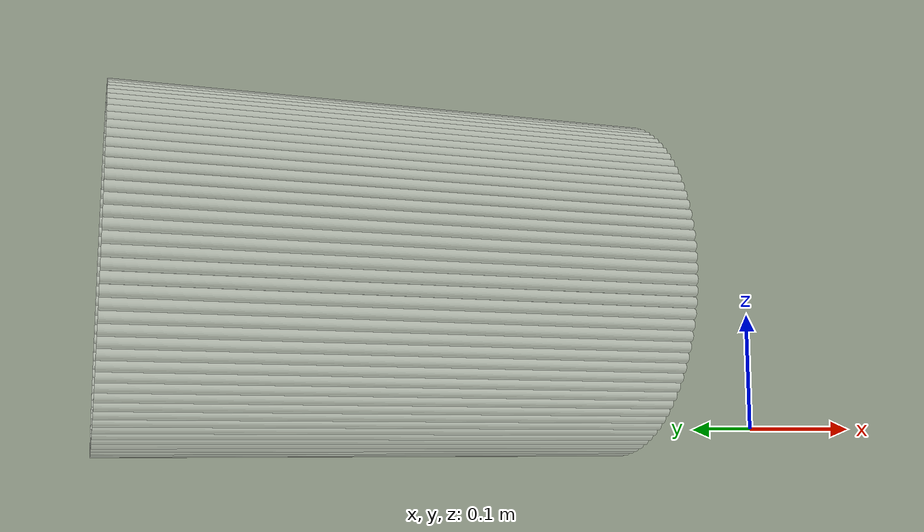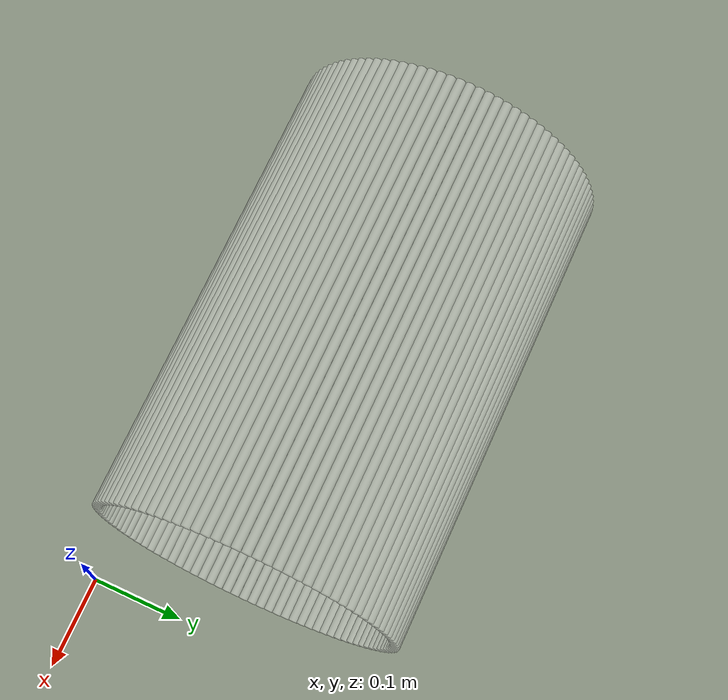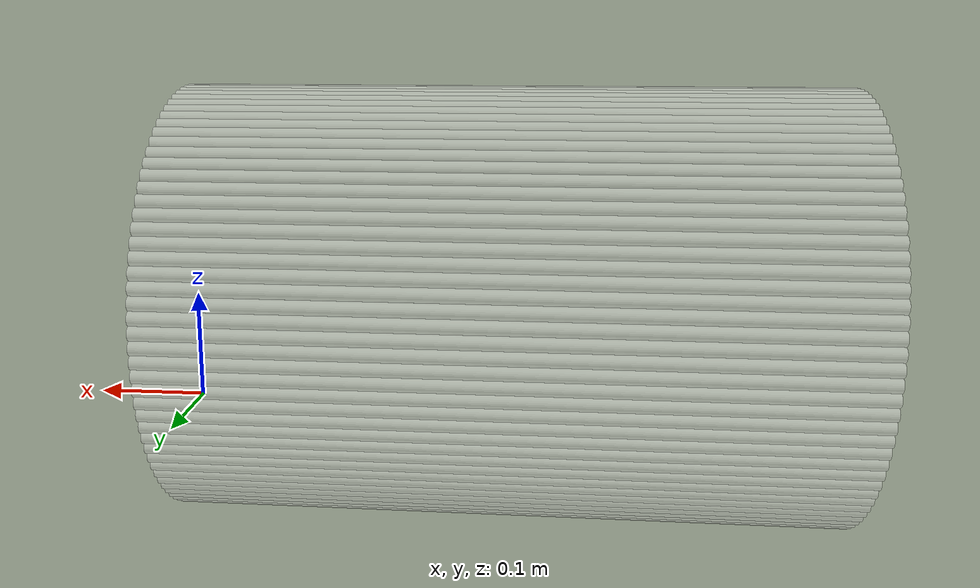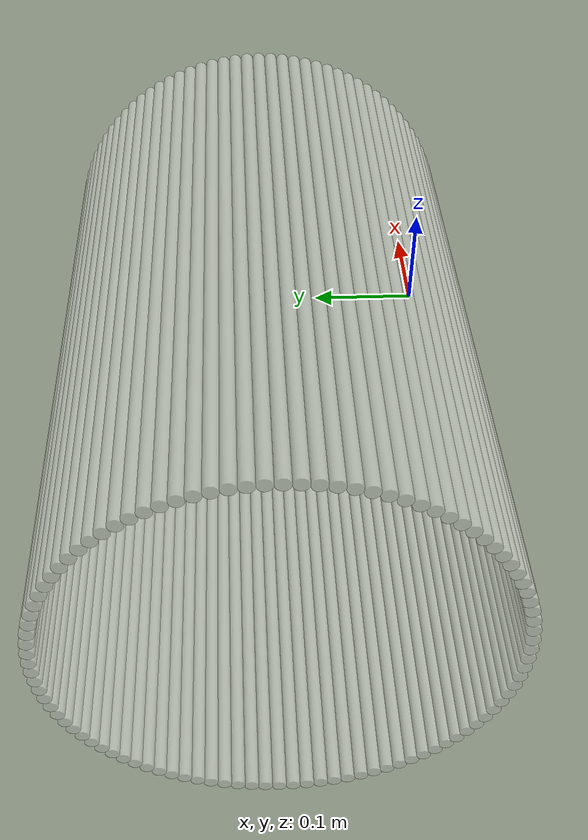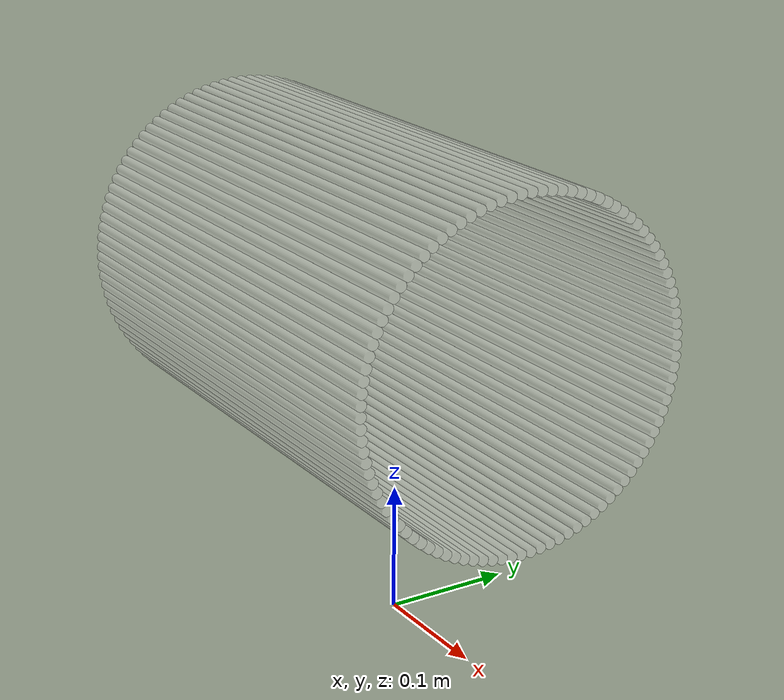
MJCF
<?xml version="1.0" encoding="utf-8"?>
<mujoco>

   <worldbody>
      <geom euler=" 0 10 0 " fromto="-0.05 0.32 0.14 -0.55 0.32 0.14" rgba="1 1 1 0.35"
            size="0.0050257"
            type="cylinder"/>
      <geom euler=" 0 20 0 " fromto="-0.05 0.31968 0.15005 -0.55 0.31968 0.15005"
            rgba="1 1 1 0.35"
            size="0.0050257"
            type="cylinder"/>
      <geom euler=" 0 30 0 " fromto="-0.05 0.31874 0.16005 -0.55 0.31874 0.16005"
            rgba="1 1 1 0.35"
            size="0.0050257"
            type="cylinder"/>
      <geom euler=" 0 40 0 " fromto="-0.05 0.31717 0.16998 -0.55 0.31717 0.16998"
            rgba="1 1 1 0.35"
            size="0.0050257"
            type="cylinder"/>
      <geom euler=" 0 50 0 " fromto="-0.05 0.31497 0.17979 -0.55 0.31497 0.17979"
            rgba="1 1 1 0.35"
            size="0.0050257"
            type="cylinder"/>
      <geom euler=" 0 60 0 " fromto="-0.05 0.31217 0.18944 -0.55 0.31217 0.18944"
            rgba="1 1 1 0.35"
            size="0.0050257"
            type="cylinder"/>
      <geom euler=" 0 70 0 " fromto="-0.05 0.30876 0.1989 -0.55 0.30876 0.1989"
            rgba="1 1 1 0.35"
            size="0.0050257"
            type="cylinder"/>
      <geom euler=" 0 80 0 " fromto="-0.05 0.30477 0.20812 -0.55 0.30477 0.20812"
            rgba="1 1 1 0.35"
            size="0.0050257"
            type="cylinder"/>
      <geom euler=" 0 90 0 " fromto="-0.05 0.30021 0.21708 -0.55 0.30021 0.21708"
            rgba="1 1 1 0.35"
            size="0.0050257"
            type="cylinder"/>
      <geom euler=" 0 100 0 " fromto="-0.05 0.29509 0.22573 -0.55 0.29509 0.22573"
            rgba="1 1 1 0.35"
            size="0.0050257"
            type="cylinder"/>
      <geom euler=" 0 110 0 " fromto="-0.05 0.28944 0.23405 -0.55 0.28944 0.23405"
            rgba="1 1 1 0.35"
            size="0.0050257"
            type="cylinder"/>
      <geom euler=" 0 120 0 " fromto="-0.05 0.28328 0.24199 -0.55 0.28328 0.24199"
            rgba="1 1 1 0.35"
            size="0.0050257"
            type="cylinder"/>
      <geom euler=" 0 130 0 " fromto="-0.05 0.27663 0.24953 -0.55 0.27663 0.24953"
            rgba="1 1 1 0.35"
            size="0.0050257"
            type="cylinder"/>
      <geom euler=" 0 140 0 " fromto="-0.05 0.26953 0.25663 -0.55 0.26953 0.25663"
            rgba="1 1 1 0.35"
            size="0.0050257"
            type="cylinder"/>
      <geom euler=" 0 150 0 " fromto="-0.05 0.26199 0.26328 -0.55 0.26199 0.26328"
            rgba="1 1 1 0.35"
            size="0.0050257"
            type="cylinder"/>
      <geom euler=" 0 160 0 " fromto="-0.05 0.25405 0.26944 -0.55 0.25405 0.26944"
            rgba="1 1 1 0.35"
            size="0.0050257"
            type="cylinder"/>
      <geom euler=" 0 170 0 " fromto="-0.05 0.24573 0.27509 -0.55 0.24573 0.27509"
            rgba="1 1 1 0.35"
            size="0.0050257"
            type="cylinder"/>
      <geom euler=" 0 180 0 " fromto="-0.05 0.23708 0.28021 -0.55 0.23708 0.28021"
            rgba="1 1 1 0.35"
            size="0.0050257"
            type="cylinder"/>
      <geom euler=" 0 190 0 " fromto="-0.05 0.22812 0.28477 -0.55 0.22812 0.28477"
            rgba="1 1 1 0.35"
            size="0.0050257"
            type="cylinder"/>
      <geom euler=" 0 200 0 " fromto="-0.05 0.2189 0.28876 -0.55 0.2189 0.28876"
            rgba="1 1 1 0.35"
            size="0.0050257"
            type="cylinder"/>
      <geom euler=" 0 210 0 " fromto="-0.05 0.20944 0.29217 -0.55 0.20944 0.29217"
            rgba="1 1 1 0.35"
            size="0.0050257"
            type="cylinder"/>
      <geom euler=" 0 220 0 " fromto="-0.05 0.19979 0.29497 -0.55 0.19979 0.29497"
            rgba="1 1 1 0.35"
            size="0.0050257"
            type="cylinder"/>
      <geom euler=" 0 230 0 " fromto="-0.05 0.18998 0.29717 -0.55 0.18998 0.29717"
            rgba="1 1 1 0.35"
            size="0.0050257"
            type="cylinder"/>
      <geom euler=" 0 240 0 " fromto="-0.05 0.18005 0.29874 -0.55 0.18005 0.29874"
            rgba="1 1 1 0.35"
            size="0.0050257"
            type="cylinder"/>
      <geom euler=" 0 250 0 " fromto="-0.05 0.17005 0.29968 -0.55 0.17005 0.29968"
            rgba="1 1 1 0.35"
            size="0.0050257"
            type="cylinder"/>
      <geom euler=" 0 260 0 " fromto="-0.05 0.16 0.3 -0.55 0.16 0.3" rgba="1 1 1 0.35"
            size="0.0050257"
            type="cylinder"/>
      <geom euler=" 0 270 0 " fromto="-0.05 0.14995 0.29968 -0.55 0.14995 0.29968"
            rgba="1 1 1 0.35"
            size="0.0050257"
            type="cylinder"/>
      <geom euler=" 0 280 0 " fromto="-0.05 0.13995 0.29874 -0.55 0.13995 0.29874"
            rgba="1 1 1 0.35"
            size="0.0050257"
            type="cylinder"/>
      <geom euler=" 0 290 0 " fromto="-0.05 0.13002 0.29717 -0.55 0.13002 0.29717"
            rgba="1 1 1 0.35"
            size="0.0050257"
            type="cylinder"/>
      <geom euler=" 0 300 0 " fromto="-0.05 0.12021 0.29497 -0.55 0.12021 0.29497"
            rgba="1 1 1 0.35"
            size="0.0050257"
            type="cylinder"/>
      <geom euler=" 0 310 0 " fromto="-0.05 0.11056 0.29217 -0.55 0.11056 0.29217"
            rgba="1 1 1 0.35"
            size="0.0050257"
            type="cylinder"/>
      <geom euler=" 0 320 0 " fromto="-0.05 0.1011 0.28876 -0.55 0.1011 0.28876"
            rgba="1 1 1 0.35"
            size="0.0050257"
            type="cylinder"/>
      <geom euler=" 0 330 0 " fromto="-0.05 0.091875 0.28477 -0.55 0.091875 0.28477"
            rgba="1 1 1 0.35"
            size="0.0050257"
            type="cylinder"/>
      <geom euler=" 0 340 0 " fromto="-0.05 0.082919 0.28021 -0.55 0.082919 0.28021"
            rgba="1 1 1 0.35"
            size="0.0050257"
            type="cylinder"/>
      <geom euler=" 0 350 0 " fromto="-0.05 0.074268 0.27509 -0.55 0.074268 0.27509"
            rgba="1 1 1 0.35"
            size="0.0050257"
            type="cylinder"/>
      <geom euler=" 0 360 0 " fromto="-0.05 0.065954 0.26944 -0.55 0.065954 0.26944"
            rgba="1 1 1 0.35"
            size="0.0050257"
            type="cylinder"/>
      <geom euler=" 0 370 0 " fromto="-0.05 0.058012 0.26328 -0.55 0.058012 0.26328"
            rgba="1 1 1 0.35"
            size="0.0050257"
            type="cylinder"/>
      <geom euler=" 0 380 0 " fromto="-0.05 0.050472 0.25663 -0.55 0.050472 0.25663"
            rgba="1 1 1 0.35"
            size="0.0050257"
            type="cylinder"/>
      <geom euler=" 0 390 0 " fromto="-0.05 0.043365 0.24953 -0.55 0.043365 0.24953"
            rgba="1 1 1 0.35"
            size="0.0050257"
            type="cylinder"/>
      <geom euler=" 0 400 0 " fromto="-0.05 0.036718 0.24199 -0.55 0.036718 0.24199"
            rgba="1 1 1 0.35"
            size="0.0050257"
            type="cylinder"/>
      <geom euler=" 0 410 0 " fromto="-0.05 0.030557 0.23405 -0.55 0.030557 0.23405"
            rgba="1 1 1 0.35"
            size="0.0050257"
            type="cylinder"/>
      <geom euler=" 0 420 0 " fromto="-0.05 0.024908 0.22573 -0.55 0.024908 0.22573"
            rgba="1 1 1 0.35"
            size="0.0050257"
            type="cylinder"/>
      <geom euler=" 0 430 0 " fromto="-0.05 0.019791 0.21708 -0.55 0.019791 0.21708"
            rgba="1 1 1 0.35"
            size="0.0050257"
            type="cylinder"/>
      <geom euler=" 0 440 0 " fromto="-0.05 0.015228 0.20812 -0.55 0.015228 0.20812"
            rgba="1 1 1 0.35"
            size="0.0050257"
            type="cylinder"/>
      <geom euler=" 0 450 0 " fromto="-0.05 0.011236 0.1989 -0.55 0.011236 0.1989"
            rgba="1 1 1 0.35"
            size="0.0050257"
            type="cylinder"/>
      <geom euler=" 0 460 0 " fromto="-0.05 0.007831 0.18944 -0.55 0.007831 0.18944"
            rgba="1 1 1 0.35"
            size="0.0050257"
            type="cylinder"/>
      <geom euler=" 0 470 0 " fromto="-0.05 0.0050267 0.17979 -0.55 0.0050267 0.17979"
            rgba="1 1 1 0.35"
            size="0.0050257"
            type="cylinder"/>
      <geom euler=" 0 480 0 " fromto="-0.05 0.002834 0.16998 -0.55 0.002834 0.16998"
            rgba="1 1 1 0.35"
            size="0.0050257"
            type="cylinder"/>
      <geom euler=" 0 490 0 " fromto="-0.05 0.0012616 0.16005 -0.55 0.0012616 0.16005"
            rgba="1 1 1 0.35"
            size="0.0050257"
            type="cylinder"/>
      <geom euler=" 0 500 0 " fromto="-0.05 0.00031572 0.15005 -0.55 0.00031572 0.15005"
            rgba="1 1 1 0.35"
            size="0.0050257"
            type="cylinder"/>
      <geom euler=" 0 510 0 " fromto="-0.05 0 0.14 -0.55 0 0.14" rgba="1 1 1 0.35"
            size="0.0050257"
            type="cylinder"/>
      <geom euler=" 0 520 0 " fromto="-0.05 0.00031572 0.12995 -0.55 0.00031572 0.12995"
            rgba="1 1 1 0.35"
            size="0.0050257"
            type="cylinder"/>
      <geom euler=" 0 530 0 " fromto="-0.05 0.0012616 0.11995 -0.55 0.0012616 0.11995"
            rgba="1 1 1 0.35"
            size="0.0050257"
            type="cylinder"/>
      <geom euler=" 0 540 0 " fromto="-0.05 0.002834 0.11002 -0.55 0.002834 0.11002"
            rgba="1 1 1 0.35"
            size="0.0050257"
            type="cylinder"/>
      <geom euler=" 0 550 0 " fromto="-0.05 0.0050267 0.10021 -0.55 0.0050267 0.10021"
            rgba="1 1 1 0.35"
            size="0.0050257"
            type="cylinder"/>
      <geom euler=" 0 560 0 " fromto="-0.05 0.007831 0.090557 -0.55 0.007831 0.090557"
            rgba="1 1 1 0.35"
            size="0.0050257"
            type="cylinder"/>
      <geom euler=" 0 570 0 " fromto="-0.05 0.011236 0.0811 -0.55 0.011236 0.0811"
            rgba="1 1 1 0.35"
            size="0.0050257"
            type="cylinder"/>
      <geom euler=" 0 580 0 " fromto="-0.05 0.015228 0.071875 -0.55 0.015228 0.071875"
            rgba="1 1 1 0.35"
            size="0.0050257"
            type="cylinder"/>
      <geom euler=" 0 590 0 " fromto="-0.05 0.019791 0.062919 -0.55 0.019791 0.062919"
            rgba="1 1 1 0.35"
            size="0.0050257"
            type="cylinder"/>
      <geom euler=" 0 600 0 " fromto="-0.05 0.024908 0.054268 -0.55 0.024908 0.054268"
            rgba="1 1 1 0.35"
            size="0.0050257"
            type="cylinder"/>
      <geom euler=" 0 610 0 " fromto="-0.05 0.030557 0.045954 -0.55 0.030557 0.045954"
            rgba="1 1 1 0.35"
            size="0.0050257"
            type="cylinder"/>
      <geom euler=" 0 620 0 " fromto="-0.05 0.036718 0.038012 -0.55 0.036718 0.038012"
            rgba="1 1 1 0.35"
            size="0.0050257"
            type="cylinder"/>
      <geom euler=" 0 630 0 " fromto="-0.05 0.043365 0.030472 -0.55 0.043365 0.030472"
            rgba="1 1 1 0.35"
            size="0.0050257"
            type="cylinder"/>
      <geom euler=" 0 640 0 " fromto="-0.05 0.050472 0.023365 -0.55 0.050472 0.023365"
            rgba="1 1 1 0.35"
            size="0.0050257"
            type="cylinder"/>
      <geom euler=" 0 650 0 " fromto="-0.05 0.058012 0.016718 -0.55 0.058012 0.016718"
            rgba="1 1 1 0.35"
            size="0.0050257"
            type="cylinder"/>
      <geom euler=" 0 660 0 " fromto="-0.05 0.065954 0.010557 -0.55 0.065954 0.010557"
            rgba="1 1 1 0.35"
            size="0.0050257"
            type="cylinder"/>
      <geom euler=" 0 670 0 " fromto="-0.05 0.074268 0.0049075 -0.55 0.074268 0.0049075"
            rgba="1 1 1 0.35"
            size="0.0050257"
            type="cylinder"/>
      <geom euler=" 0 680 0 "
            fromto="-0.05 0.082919 -0.00020907 -0.55 0.082919 -0.00020907"
            rgba="1 1 1 0.35"
            size="0.0050257"
            type="cylinder"/>
      <geom euler=" 0 690 0 " fromto="-0.05 0.091875 -0.0047723 -0.55 0.091875 -0.0047723"
            rgba="1 1 1 0.35"
            size="0.0050257"
            type="cylinder"/>
      <geom euler=" 0 700 0 " fromto="-0.05 0.1011 -0.0087642 -0.55 0.1011 -0.0087642"
            rgba="1 1 1 0.35"
            size="0.0050257"
            type="cylinder"/>
      <geom euler=" 0 710 0 " fromto="-0.05 0.11056 -0.012169 -0.55 0.11056 -0.012169"
            rgba="1 1 1 0.35"
            size="0.0050257"
            type="cylinder"/>
      <geom euler=" 0 720 0 " fromto="-0.05 0.12021 -0.014973 -0.55 0.12021 -0.014973"
            rgba="1 1 1 0.35"
            size="0.0050257"
            type="cylinder"/>
      <geom euler=" 0 730 0 " fromto="-0.05 0.13002 -0.017166 -0.55 0.13002 -0.017166"
            rgba="1 1 1 0.35"
            size="0.0050257"
            type="cylinder"/>
      <geom euler=" 0 740 0 " fromto="-0.05 0.13995 -0.018738 -0.55 0.13995 -0.018738"
            rgba="1 1 1 0.35"
            size="0.0050257"
            type="cylinder"/>
      <geom euler=" 0 750 0 " fromto="-0.05 0.14995 -0.019684 -0.55 0.14995 -0.019684"
            rgba="1 1 1 0.35"
            size="0.0050257"
            type="cylinder"/>
      <geom euler=" 0 760 0 " fromto="-0.05 0.16 -0.02 -0.55 0.16 -0.02" rgba="1 1 1 0.35"
            size="0.0050257"
            type="cylinder"/>
      <geom euler=" 0 770 0 " fromto="-0.05 0.17005 -0.019684 -0.55 0.17005 -0.019684"
            rgba="1 1 1 0.35"
            size="0.0050257"
            type="cylinder"/>
      <geom euler=" 0 780 0 " fromto="-0.05 0.18005 -0.018738 -0.55 0.18005 -0.018738"
            rgba="1 1 1 0.35"
            size="0.0050257"
            type="cylinder"/>
      <geom euler=" 0 790 0 " fromto="-0.05 0.18998 -0.017166 -0.55 0.18998 -0.017166"
            rgba="1 1 1 0.35"
            size="0.0050257"
            type="cylinder"/>
      <geom euler=" 0 800 0 " fromto="-0.05 0.19979 -0.014973 -0.55 0.19979 -0.014973"
            rgba="1 1 1 0.35"
            size="0.0050257"
            type="cylinder"/>
      <geom euler=" 0 810 0 " fromto="-0.05 0.20944 -0.012169 -0.55 0.20944 -0.012169"
            rgba="1 1 1 0.35"
            size="0.0050257"
            type="cylinder"/>
      <geom euler=" 0 820 0 " fromto="-0.05 0.2189 -0.0087642 -0.55 0.2189 -0.0087642"
            rgba="1 1 1 0.35"
            size="0.0050257"
            type="cylinder"/>
      <geom euler=" 0 830 0 " fromto="-0.05 0.22812 -0.0047723 -0.55 0.22812 -0.0047723"
            rgba="1 1 1 0.35"
            size="0.0050257"
            type="cylinder"/>
      <geom euler=" 0 840 0 " fromto="-0.05 0.23708 -0.00020907 -0.55 0.23708 -0.00020907"
            rgba="1 1 1 0.35"
            size="0.0050257"
            type="cylinder"/>
      <geom euler=" 0 850 0 " fromto="-0.05 0.24573 0.0049075 -0.55 0.24573 0.0049075"
            rgba="1 1 1 0.35"
            size="0.0050257"
            type="cylinder"/>
      <geom euler=" 0 860 0 " fromto="-0.05 0.25405 0.010557 -0.55 0.25405 0.010557"
            rgba="1 1 1 0.35"
            size="0.0050257"
            type="cylinder"/>
      <geom euler=" 0 870 0 " fromto="-0.05 0.26199 0.016718 -0.55 0.26199 0.016718"
            rgba="1 1 1 0.35"
            size="0.0050257"
            type="cylinder"/>
      <geom euler=" 0 880 0 " fromto="-0.05 0.26953 0.023365 -0.55 0.26953 0.023365"
            rgba="1 1 1 0.35"
            size="0.0050257"
            type="cylinder"/>
      <geom euler=" 0 890 0 " fromto="-0.05 0.27663 0.030472 -0.55 0.27663 0.030472"
            rgba="1 1 1 0.35"
            size="0.0050257"
            type="cylinder"/>
      <geom euler=" 0 900 0 " fromto="-0.05 0.28328 0.038012 -0.55 0.28328 0.038012"
            rgba="1 1 1 0.35"
            size="0.0050257"
            type="cylinder"/>
      <geom euler=" 0 910 0 " fromto="-0.05 0.28944 0.045954 -0.55 0.28944 0.045954"
            rgba="1 1 1 0.35"
            size="0.0050257"
            type="cylinder"/>
      <geom euler=" 0 920 0 " fromto="-0.05 0.29509 0.054268 -0.55 0.29509 0.054268"
            rgba="1 1 1 0.35"
            size="0.0050257"
            type="cylinder"/>
      <geom euler=" 0 930 0 " fromto="-0.05 0.30021 0.062919 -0.55 0.30021 0.062919"
            rgba="1 1 1 0.35"
            size="0.0050257"
            type="cylinder"/>
      <geom euler=" 0 940 0 " fromto="-0.05 0.30477 0.071875 -0.55 0.30477 0.071875"
            rgba="1 1 1 0.35"
            size="0.0050257"
            type="cylinder"/>
      <geom euler=" 0 950 0 " fromto="-0.05 0.30876 0.0811 -0.55 0.30876 0.0811"
            rgba="1 1 1 0.35"
            size="0.0050257"
            type="cylinder"/>
      <geom euler=" 0 960 0 " fromto="-0.05 0.31217 0.090557 -0.55 0.31217 0.090557"
            rgba="1 1 1 0.35"
            size="0.0050257"
            type="cylinder"/>
      <geom euler=" 0 970 0 " fromto="-0.05 0.31497 0.10021 -0.55 0.31497 0.10021"
            rgba="1 1 1 0.35"
            size="0.0050257"
            type="cylinder"/>
      <geom euler=" 0 980 0 " fromto="-0.05 0.31717 0.11002 -0.55 0.31717 0.11002"
            rgba="1 1 1 0.35"
            size="0.0050257"
            type="cylinder"/>
      <geom euler=" 0 990 0 " fromto="-0.05 0.31874 0.11995 -0.55 0.31874 0.11995"
            rgba="1 1 1 0.35"
            size="0.0050257"
            type="cylinder"/>
      <geom euler=" 0 1000 0 " fromto="-0.05 0.31968 0.12995 -0.55 0.31968 0.12995"
            rgba="1 1 1 0.35"
            size="0.0050257"
            type="cylinder"/>
   </worldbody>
</mujoco>
